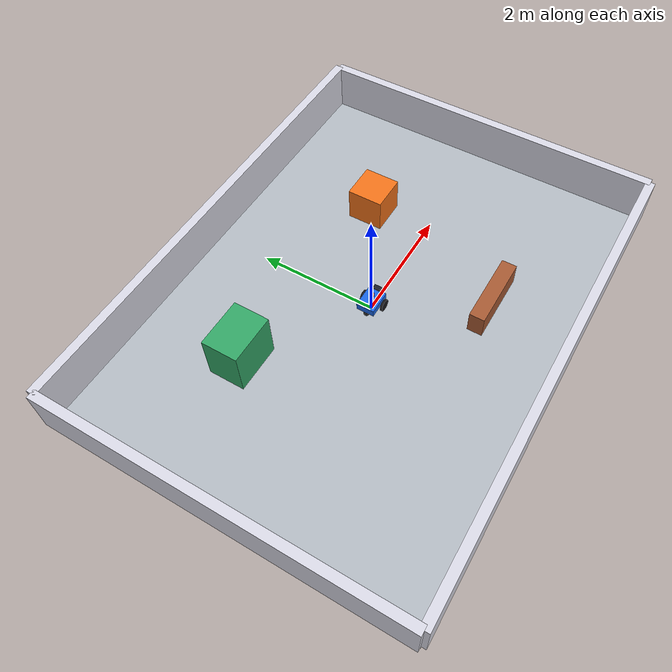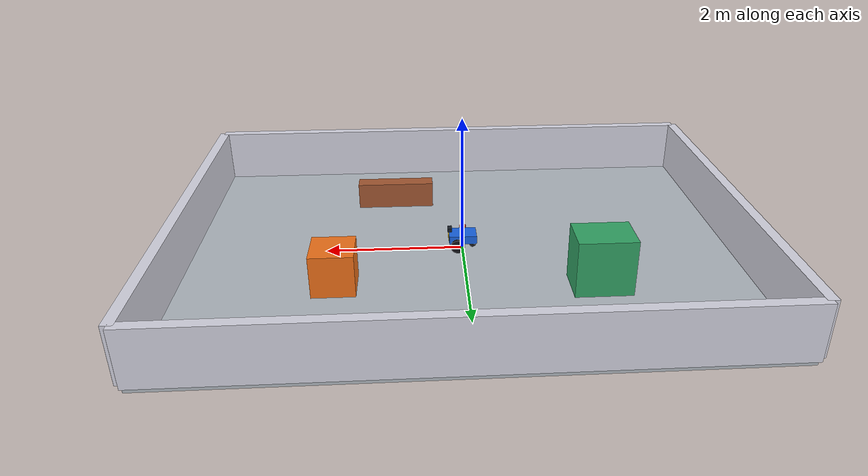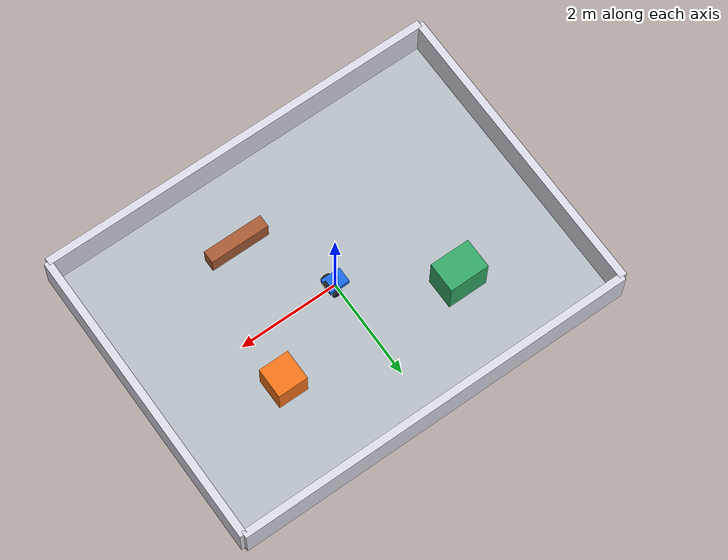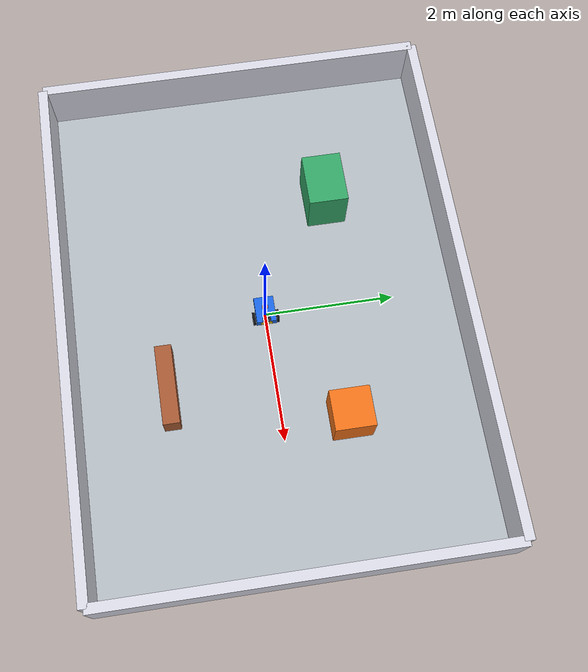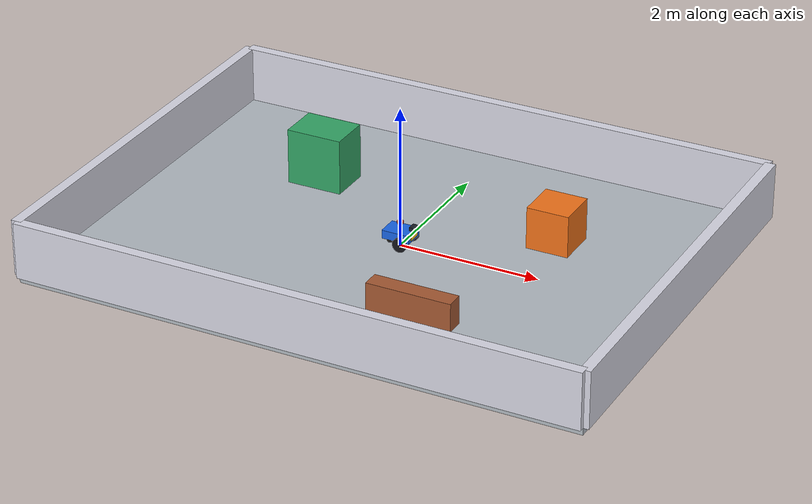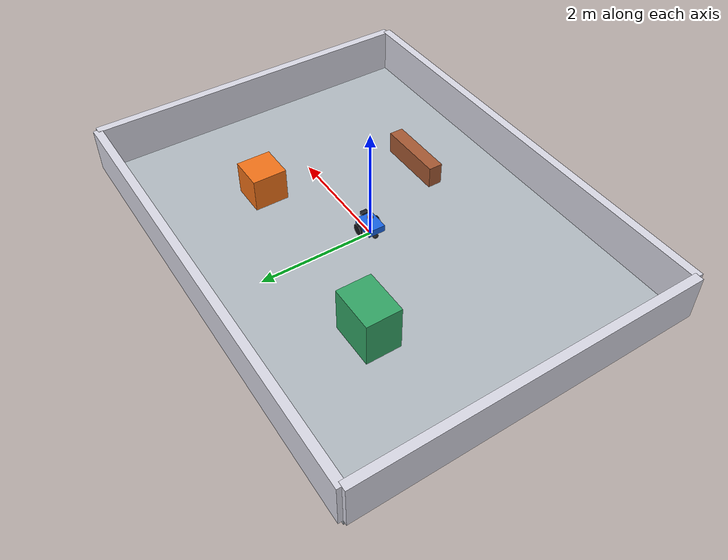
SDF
<?xml version='1.0' encoding='utf-8'?>
<sdf version="1.8">
  <world name="indoor_lab">
    <physics name="default" type="ignored">
      <max_step_size>0.002</max_step_size>
      <real_time_factor>1</real_time_factor>
    </physics>
    <plugin filename="ignition-gazebo-physics-system" name="ignition::gazebo::systems::Physics" />
    <plugin filename="ignition-gazebo-user-commands-system" name="ignition::gazebo::systems::UserCommands" />
    <plugin filename="ignition-gazebo-scene-broadcaster-system" name="ignition::gazebo::systems::SceneBroadcaster" />
    <light type="directional" name="sun">
      <pose>0 0 8 0 0 0</pose>
      <diffuse>0.9 0.9 0.9 1</diffuse>
      <direction>-0.5 -0.2 -1</direction>
      <cast_shadows>false</cast_shadows>
    </light>
    <scene>
      <ambient>0.5 0.5 0.5 1</ambient>
      <background>0.12 0.16 0.22 1</background>
    </scene>
    <model name="floor">
      <static>true</static>
      <pose>0 0 -0.05 0 0 0</pose>
      <link name="link">
        <collision name="collision">
          <geometry>
            <box>
              <size>8 6 0.1</size>
            </box>
          </geometry>
        </collision>
        <visual name="visual">
          <geometry>
            <box>
              <size>8 6 0.1</size>
            </box>
          </geometry>
          <material>
            <ambient>0.7 0.73 0.76 1</ambient>
            <diffuse>0.7 0.73 0.76 1</diffuse>
          </material>
        </visual>
      </link>
    </model>
    <model name="north">
      <static>true</static>
      <pose>0 3 0.4 0 0 0</pose>
      <link name="link">
        <collision name="collision">
          <geometry>
            <box>
              <size>8 0.15 0.8</size>
            </box>
          </geometry>
        </collision>
        <visual name="visual">
          <geometry>
            <box>
              <size>8 0.15 0.8</size>
            </box>
          </geometry>
          <material>
            <ambient>0.85 0.85 0.9 1</ambient>
            <diffuse>0.85 0.85 0.9 1</diffuse>
          </material>
        </visual>
      </link>
    </model>
    <model name="south">
      <static>true</static>
      <pose>0 -3 0.4 0 0 0</pose>
      <link name="link">
        <collision name="collision">
          <geometry>
            <box>
              <size>8 0.15 0.8</size>
            </box>
          </geometry>
        </collision>
        <visual name="visual">
          <geometry>
            <box>
              <size>8 0.15 0.8</size>
            </box>
          </geometry>
          <material>
            <ambient>0.85 0.85 0.9 1</ambient>
            <diffuse>0.85 0.85 0.9 1</diffuse>
          </material>
        </visual>
      </link>
    </model>
    <model name="east">
      <static>true</static>
      <pose>4 0 0.4 0 0 0</pose>
      <link name="link">
        <collision name="collision">
          <geometry>
            <box>
              <size>0.15 6 0.8</size>
            </box>
          </geometry>
        </collision>
        <visual name="visual">
          <geometry>
            <box>
              <size>0.15 6 0.8</size>
            </box>
          </geometry>
          <material>
            <ambient>0.85 0.85 0.9 1</ambient>
            <diffuse>0.85 0.85 0.9 1</diffuse>
          </material>
        </visual>
      </link>
    </model>
    <model name="west">
      <static>true</static>
      <pose>-4 0 0.4 0 0 0</pose>
      <link name="link">
        <collision name="collision">
          <geometry>
            <box>
              <size>0.15 6 0.8</size>
            </box>
          </geometry>
        </collision>
        <visual name="visual">
          <geometry>
            <box>
              <size>0.15 6 0.8</size>
            </box>
          </geometry>
          <material>
            <ambient>0.85 0.85 0.9 1</ambient>
            <diffuse>0.85 0.85 0.9 1</diffuse>
          </material>
        </visual>
      </link>
    </model>
    <model name="orange_box">
      <static>true</static>
      <pose>1.8 1 0.3 0 0 0</pose>
      <link name="link">
        <collision name="collision">
          <geometry>
            <box>
              <size>0.6 0.6 0.6</size>
            </box>
          </geometry>
        </collision>
        <visual name="visual">
          <geometry>
            <box>
              <size>0.6 0.6 0.6</size>
            </box>
          </geometry>
          <material>
            <ambient>0.95 0.45 0.1 1</ambient>
            <diffuse>0.95 0.45 0.1 1</diffuse>
          </material>
        </visual>
      </link>
    </model>
    <model name="green_box">
      <static>true</static>
      <pose>-1.8 1.2 0.4 0 0 0</pose>
      <link name="link">
        <collision name="collision">
          <geometry>
            <box>
              <size>0.8 0.6 0.8</size>
            </box>
          </geometry>
        </collision>
        <visual name="visual">
          <geometry>
            <box>
              <size>0.8 0.6 0.8</size>
            </box>
          </geometry>
          <material>
            <ambient>0.2 0.65 0.4 1</ambient>
            <diffuse>0.2 0.65 0.4 1</diffuse>
          </material>
        </visual>
      </link>
    </model>
    <model name="low_barrier">
      <static>true</static>
      <pose>1 -1.6 0.2 0 0 0</pose>
      <link name="link">
        <collision name="collision">
          <geometry>
            <box>
              <size>1.2 0.25 0.4</size>
            </box>
          </geometry>
        </collision>
        <visual name="visual">
          <geometry>
            <box>
              <size>1.2 0.25 0.4</size>
            </box>
          </geometry>
          <material>
            <ambient>0.65 0.35 0.2 1</ambient>
            <diffuse>0.65 0.35 0.2 1</diffuse>
          </material>
        </visual>
      </link>
    </model>
    <model name="rover">
      <pose>0 0 0.01 0 0 0</pose>
      <link name="base_link">
        <pose>0 0 0.18 0 0 0</pose>
        <inertial>
          <mass>3</mass>
          <inertia>
            <ixx>0.025</ixx>
            <iyy>0.047</iyy>
            <izz>0.061</izz>
            <ixy>0</ixy>
            <ixz>0</ixz>
            <iyz>0</iyz>
          </inertia>
        </inertial>
        <collision name="collision">
          <geometry>
            <box>
              <size>0.4 0.3 0.12</size>
            </box>
          </geometry>
        </collision>
        <visual name="visual">
          <geometry>
            <box>
              <size>0.4 0.3 0.12</size>
            </box>
          </geometry>
          <material>
            <ambient>0.1 0.4 0.9 1</ambient>
            <diffuse>0.1 0.4 0.9 1</diffuse>
          </material>
        </visual>
        <visual name="front_marker">
          <pose>0.205 0 0 0 0 0</pose>
          <geometry>
            <box>
              <size>0.01 0.18 0.06</size>
            </box>
          </geometry>
          <material>
            <diffuse>1 0.8 0.1 1</diffuse>
            <ambient>1 0.8 0.1 1</ambient>
          </material>
        </visual>
        <visual name="camera_housing">
          <pose>0.19 0 0.12 0 0 0</pose>
          <geometry>
            <box>
              <size>0.06 0.12 0.05</size>
            </box>
          </geometry>
          <material>
            <ambient>0.1 0.12 0.16 1</ambient>
            <diffuse>0.1 0.12 0.16 1</diffuse>
          </material>
        </visual>
        <sensor name="rgbd" type="rgbd_camera">
          <pose>0.22 0 0.12 0 0 0</pose>
          <topic>/camera</topic>
          <always_on>true</always_on>
          <update_rate>5</update_rate>
          <camera>
            <horizontal_fov>1.0471975512</horizontal_fov>
            <optical_frame_id>camera_optical_frame</optical_frame_id>
            <image>
              <width>320</width>
              <height>240</height>
              <format>R8G8B8</format>
            </image>
            <clip>
              <near>0.1</near>
              <far>8.0</far>
            </clip>
          </camera>
        </sensor>
        <visual name="lidar_housing">
          <pose>0 0 0.16 0 0 0</pose>
          <geometry>
            <cylinder>
              <radius>0.045</radius>
              <length>0.03</length>
            </cylinder>
          </geometry>
          <material>
            <ambient>0.8 0.15 0.1 1</ambient>
            <diffuse>0.8 0.15 0.1 1</diffuse>
          </material>
        </visual>
        <sensor name="lidar" type="gpu_lidar">
          <pose>0 0 0.18 0 0 0</pose>
          <topic>/scan</topic>
          <always_on>true</always_on>
          <update_rate>5</update_rate>
          <lidar>
            <scan>
              <horizontal>
                <samples>360</samples>
                <resolution>1</resolution>
                <min_angle>-3.14159265359</min_angle>
                <max_angle>3.14159265359</max_angle>
              </horizontal>
              <vertical>
                <samples>1</samples>
                <resolution>1</resolution>
                <min_angle>0</min_angle>
                <max_angle>0</max_angle>
              </vertical>
            </scan>
            <range>
              <min>0.1</min>
              <max>8.0</max>
              <resolution>0.01</resolution>
            </range>
          </lidar>
        </sensor>
      </link>
      <link name="left_wheel">
        <pose>0.08 0.18 0.1 1.57079632679 0 0</pose>
        <inertial>
          <mass>0.3</mass>
          <inertia>
            <ixx>0.0008</ixx>
            <iyy>0.0008</iyy>
            <izz>0.0015</izz>
            <ixy>0</ixy>
            <ixz>0</ixz>
            <iyz>0</iyz>
          </inertia>
        </inertial>
        <collision name="collision">
          <geometry>
            <cylinder>
              <radius>0.1</radius>
              <length>0.04</length>
            </cylinder>
          </geometry>
        </collision>
        <visual name="visual">
          <geometry>
            <cylinder>
              <radius>0.1</radius>
              <length>0.04</length>
            </cylinder>
          </geometry>
          <material>
            <ambient>0.08 0.08 0.1 1</ambient>
            <diffuse>0.08 0.08 0.1 1</diffuse>
          </material>
        </visual>
      </link>
      <joint name="left_wheel_joint" type="revolute">
        <parent>base_link</parent>
        <child>left_wheel</child>
        <axis>
          <xyz expressed_in="__model__">0 1 0</xyz>
        </axis>
      </joint>
      <link name="right_wheel">
        <pose>0.08 -0.18 0.1 1.57079632679 0 0</pose>
        <inertial>
          <mass>0.3</mass>
          <inertia>
            <ixx>0.0008</ixx>
            <iyy>0.0008</iyy>
            <izz>0.0015</izz>
            <ixy>0</ixy>
            <ixz>0</ixz>
            <iyz>0</iyz>
          </inertia>
        </inertial>
        <collision name="collision">
          <geometry>
            <cylinder>
              <radius>0.1</radius>
              <length>0.04</length>
            </cylinder>
          </geometry>
        </collision>
        <visual name="visual">
          <geometry>
            <cylinder>
              <radius>0.1</radius>
              <length>0.04</length>
            </cylinder>
          </geometry>
          <material>
            <ambient>0.08 0.08 0.1 1</ambient>
            <diffuse>0.08 0.08 0.1 1</diffuse>
          </material>
        </visual>
      </link>
      <joint name="right_wheel_joint" type="revolute">
        <parent>base_link</parent>
        <child>right_wheel</child>
        <axis>
          <xyz expressed_in="__model__">0 1 0</xyz>
        </axis>
      </joint>
      <link name="caster">
        <pose>-0.15 0 0.05 0 0 0</pose>
        <inertial>
          <mass>0.1</mass>
          <inertia>
            <ixx>0.0001</ixx>
            <iyy>0.0001</iyy>
            <izz>0.0001</izz>
            <ixy>0</ixy>
            <ixz>0</ixz>
            <iyz>0</iyz>
          </inertia>
        </inertial>
        <collision name="collision">
          <geometry>
            <sphere>
              <radius>0.05</radius>
            </sphere>
          </geometry>
        </collision>
        <visual name="visual">
          <geometry>
            <sphere>
              <radius>0.05</radius>
            </sphere>
          </geometry>
          <material>
            <ambient>0.15 0.15 0.15 1</ambient>
            <diffuse>0.15 0.15 0.15 1</diffuse>
          </material>
        </visual>
      </link>
      <joint name="caster_joint" type="ball">
        <parent>base_link</parent>
        <child>caster</child>
      </joint>
      <plugin filename="ignition-gazebo-diff-drive-system" name="ignition::gazebo::systems::DiffDrive">
        <left_joint>left_wheel_joint</left_joint>
        <right_joint>right_wheel_joint</right_joint>
        <wheel_separation>0.36</wheel_separation>
        <wheel_radius>0.1</wheel_radius>
        <topic>/cmd_vel</topic>
        <odom_topic>/odom</odom_topic>
        <tf_topic>/tf</tf_topic>
        <frame_id>odom</frame_id>
        <child_frame_id>base_link</child_frame_id>
        <odom_publish_frequency>30</odom_publish_frequency>
        <max_linear_velocity>0.5</max_linear_velocity>
        <min_linear_velocity>-0.5</min_linear_velocity>
        <max_angular_velocity>1.2</max_angular_velocity>
        <min_angular_velocity>-1.2</min_angular_velocity>
      </plugin>
      <plugin filename="ignition-gazebo-pose-publisher-system" name="ignition::gazebo::systems::PosePublisher">
        <publish_link_pose>true</publish_link_pose>
        <publish_model_pose>true</publish_model_pose>
        <publish_nested_model_pose>true</publish_nested_model_pose>
        <use_pose_vector_msg>true</use_pose_vector_msg>
        <update_frequency>50</update_frequency>
      </plugin>
    </model>
    <plugin filename="ignition-gazebo-sensors-system" name="ignition::gazebo::systems::Sensors">
      <render_engine>ogre2</render_engine>
    </plugin>
  </world>
</sdf>
